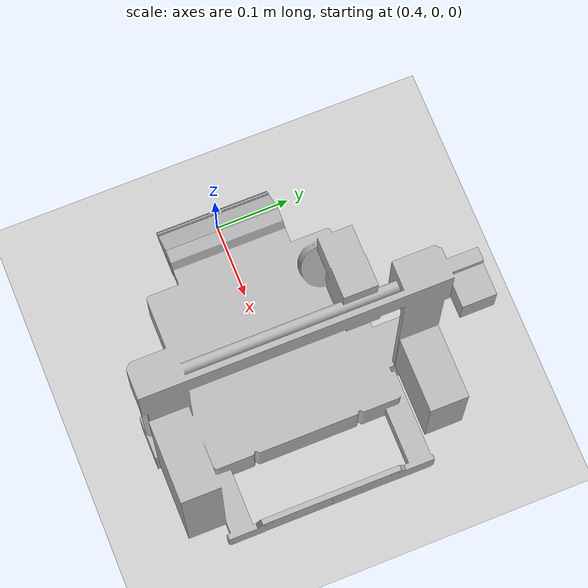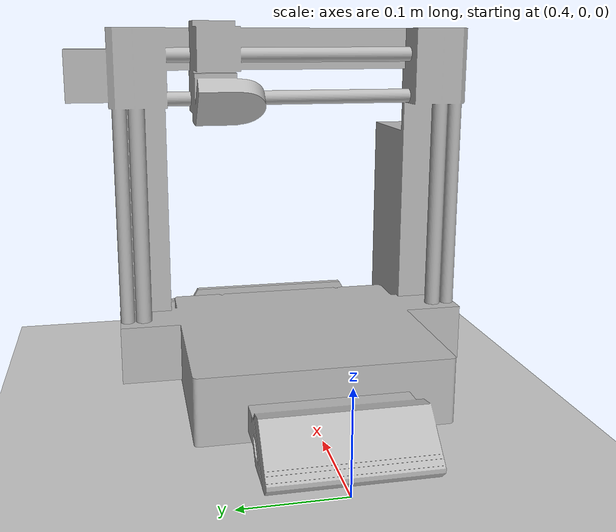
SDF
<?xml version="1.0" ?>
<sdf version="1.5">
  <world name="default">

    <!-- A global light source -->
    <include>
      <uri>model://sun</uri>
    </include>
    <!-- A ground plane -->
    <include>
      <uri>model://ground_plane</uri>
    </include>

    <physics type="ode">
      <max_step_size>0.001</max_step_size>
    </physics>

    <plugin name="gazebo_ros_state" filename="libgazebo_ros_state.so">
      <ros>
        <namespace>/gazebo</namespace>
      </ros>

      <alwaysOn>true</alwaysOn>
      <update_rate>10.0</update_rate>
    </plugin>

    <model name='3DPrinterBed'>
      <link name='3DPrinterBed'>
        <inertial>
          <pose>0.908785 0.150759 0 1.57079632679 0 -1.57079632679</pose>
          <mass>1</mass>
          <inertia>
            <ixx>2.7e-05</ixx>
            <ixy>0</ixy>
            <ixz>0</ixz>
            <iyy>2.7e-05</iyy>
            <iyz>0</iyz>
            <izz>2.7e-05</izz>
          </inertia>
        </inertial>
        <collision name='3DPrinterBed_collision'>
          <pose>0.908785 0.150759 0 1.57079632679 0 -1.57079632679</pose>
          <geometry>
            <mesh>
              <scale>1 1 1</scale>
              <uri>file:///home/robin/ros2_ws/install/qarm_v2/share/qarm_v2/meshes/world/3dprinter_simplified.stl</uri>
            </mesh>
          </geometry>
        </collision>
        <visual name='3DPrinterBed_visual'>
          <pose>0.908785 0.150759 0 1.57079632679 0 -1.57079632679</pose>
          <geometry>
            <mesh>
              <scale>1 1 1</scale>
              <uri>file:///home/robin/ros2_ws/install/qarm_v2/share/qarm_v2/meshes/world/3dprinter_simplified.stl</uri>
            </mesh>
          </geometry>
        </visual>
      </link>
      <static>1</static>
    </model>

  </world>
</sdf>
